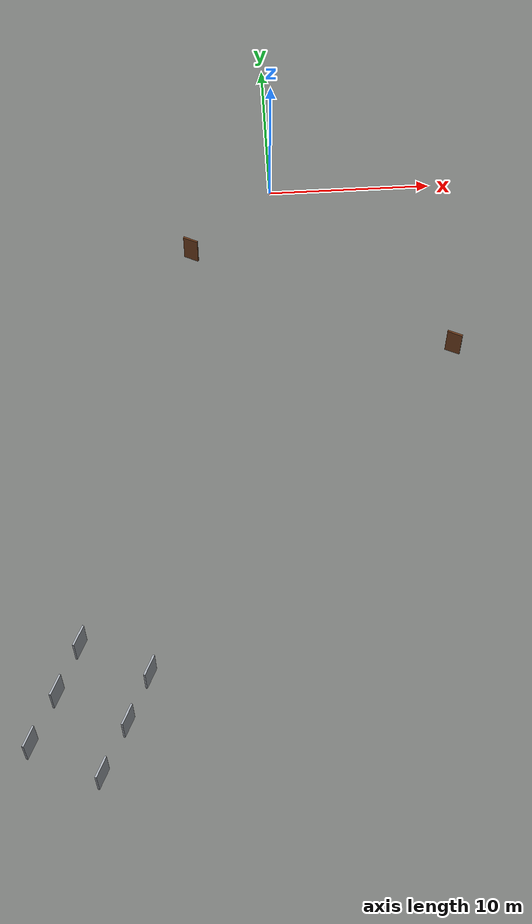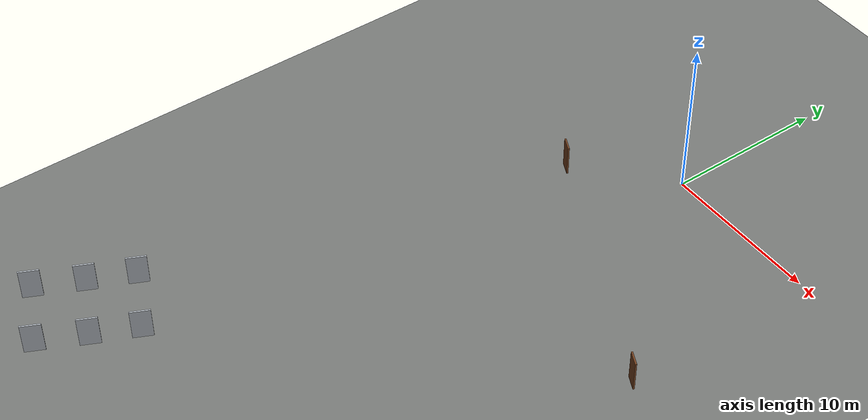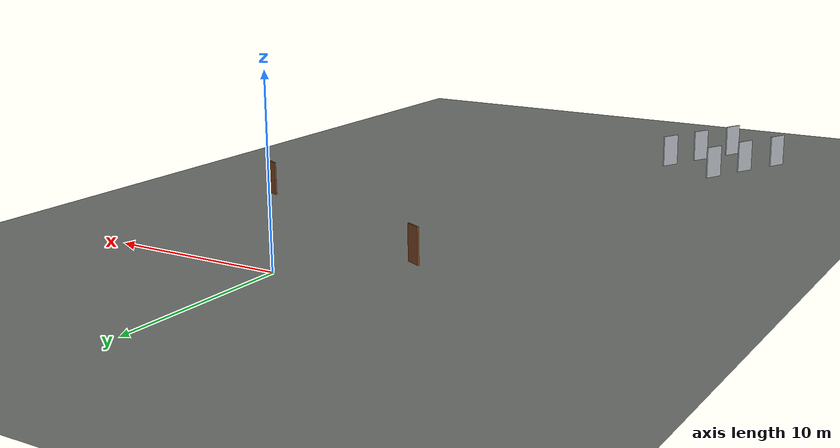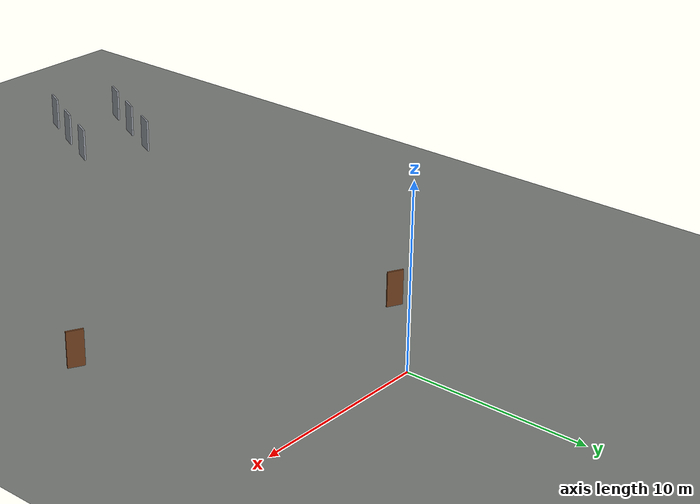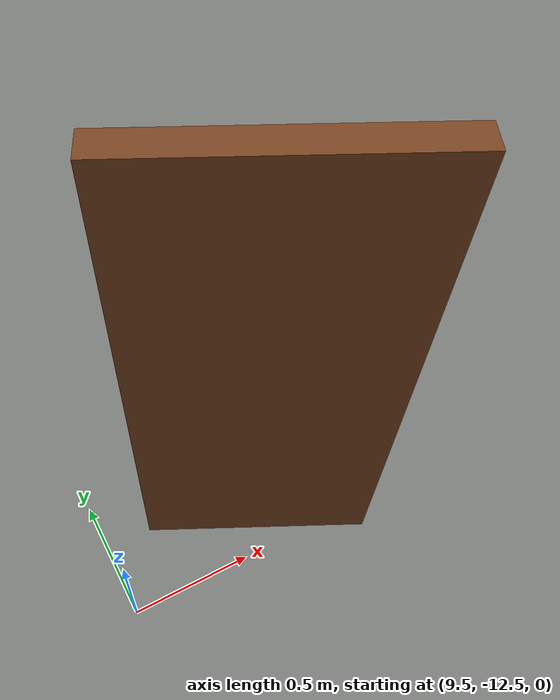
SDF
<sdf version="1.8">
 <world name="fuse_3rd">
  <physics type="ode">
   <max_step_size>0.004</max_step_size>
   <real_time_factor>1.0</real_time_factor>
   <real_time_update_rate>250</real_time_update_rate>
  </physics>
  <plugin name="gz::sim::systems::Physics" filename="gz-sim-physics-system"/>
  <plugin name="gz::sim::systems::UserCommands" filename="gz-sim-user-commands-system"/>
  <plugin name="gz::sim::systems::SceneBroadcaster" filename="gz-sim-scene-broadcaster-system"/>
  <plugin name="gz::sim::systems::Contact" filename="gz-sim-contact-system"/>
  <plugin name="gz::sim::systems::Imu" filename="gz-sim-imu-system"/>
  <plugin name="gz::sim::systems::Sensors" filename="gz-sim-sensors-system">
   <render_engine>ogre2</render_engine>
  </plugin>
  <gravity>0 0 -9.8</gravity>
  <magnetic_field>6e-06 2.3e-05 -4.2e-05</magnetic_field>
  <atmosphere type="adiabatic"/>
  <scene>
   <ambient>0.55 0.55 0.55 1</ambient>
   <background>0.72 0.76 0.80 1</background>
   <shadows>true</shadows>
  </scene>
  <light name="sun" type="directional">
   <pose>0 0 30 0 0 0</pose>
   <diffuse>0.8 0.8 0.78 1</diffuse>
   <specular>0.2 0.2 0.2 1</specular>
   <attenuation>
    <range>1000</range>
    <constant>0.9</constant>
    <linear>0.01</linear>
    <quadratic>0.001</quadratic>
   </attenuation>
   <direction>-0.45 0.2 -0.87</direction>
  </light>
  <model name="ground_plane">
   <static>true</static>
   <link name="link">
    <collision name="collision">
     <geometry><plane><normal>0 0 1</normal><size>160 160</size></plane></geometry>
    </collision>
    <visual name="visual">
     <geometry><plane><normal>0 0 1</normal><size>160 160</size></plane></geometry>
     <material>
      <ambient>0.45 0.46 0.45 1</ambient>
      <diffuse>0.45 0.46 0.45 1</diffuse>
      <specular>0.05 0.05 0.05 1</specular>
     </material>
    </visual>
   </link>
  </model>
  <model name="door_3300">
   <static>true</static>
   <pose>10.575 -12.575 0.0 0 0 1.118826</pose>
   <link name="panel">
    <collision name="collision">
     <pose>0 0.5 1.0 0 0 0</pose>
     <geometry><box><size>0.1 0.9144 2.0</size></box></geometry>
    </collision>
    <visual name="visual">
     <pose>0 0.5 1.0 0 0 0</pose>
     <geometry><box><size>0.1 0.9144 2.0</size></box></geometry>
     <material><ambient>0.45 0.25 0.12 1</ambient><diffuse>0.45 0.25 0.12 1</diffuse></material>
    </visual>
   </link>
  </model>
  <model name="door_2">
   <static>true</static>
   <pose>-4.675 -4.975 0.0 0 0 1.118826</pose>
   <link name="panel">
    <collision name="collision">
     <pose>0 0.5 1.0 0 0 0</pose>
     <geometry><box><size>0.1 0.9144 2.0</size></box></geometry>
    </collision>
    <visual name="visual">
     <pose>0 0.5 1.0 0 0 0</pose>
     <geometry><box><size>0.1 0.9144 2.0</size></box></geometry>
     <material><ambient>0.45 0.25 0.12 1</ambient><diffuse>0.45 0.25 0.12 1</diffuse></material>
    </visual>
   </link>
  </model>
  <model name="elevator_a_door">
   <static>true</static>
   <pose>-7.925 -31.325 0.0 0 0 2.68962233</pose>
   <link name="panel">
    <collision name="collision">
     <pose>0 0.6 1.0 0 0 0</pose>
     <geometry><box><size>0.1 1.2 2.0</size></box></geometry>
    </collision>
    <visual name="visual">
     <pose>0 0.6 1.0 0 0 0</pose>
     <geometry><box><size>0.1 1.2 2.0</size></box></geometry>
     <material>
      <ambient>0.55 0.57 0.60 1</ambient>
      <diffuse>0.65 0.67 0.70 1</diffuse>
      <specular>0.35 0.35 0.35 1</specular>
     </material>
    </visual>
   </link>
  </model>
  <model name="elevator_b_door">
   <static>true</static>
   <pose>-9.125 -33.925 0.0 0 0 2.68962233</pose>
   <link name="panel">
    <collision name="collision">
     <pose>0 0.6 1.0 0 0 0</pose>
     <geometry><box><size>0.1 1.2 2.0</size></box></geometry>
    </collision>
    <visual name="visual">
     <pose>0 0.6 1.0 0 0 0</pose>
     <geometry><box><size>0.1 1.2 2.0</size></box></geometry>
     <material>
      <ambient>0.55 0.57 0.60 1</ambient>
      <diffuse>0.65 0.67 0.70 1</diffuse>
      <specular>0.35 0.35 0.35 1</specular>
     </material>
    </visual>
   </link>
  </model>
  <model name="elevator_c_door">
   <static>true</static>
   <pose>-10.475 -36.625 0.0 0 0 2.68962233</pose>
   <link name="panel">
    <collision name="collision">
     <pose>0 0.6 1.0 0 0 0</pose>
     <geometry><box><size>0.1 1.2 2.0</size></box></geometry>
    </collision>
    <visual name="visual">
     <pose>0 0.6 1.0 0 0 0</pose>
     <geometry><box><size>0.1 1.2 2.0</size></box></geometry>
     <material>
      <ambient>0.55 0.57 0.60 1</ambient>
      <diffuse>0.65 0.67 0.70 1</diffuse>
      <specular>0.35 0.35 0.35 1</specular>
     </material>
    </visual>
   </link>
  </model>
  <model name="elevator_d_door">
   <static>true</static>
   <pose>-11.625 -29.475 0 0 0 2.68962233</pose>
   <link name="panel">
    <collision name="collision">
     <pose>0 0.6 1 0 0 0</pose>
     <geometry><box><size>0.1 1.2 2.0</size></box></geometry>
    </collision>
    <visual name="visual">
     <pose>0 0.6 1 0 0 0</pose>
     <geometry><box><size>0.1 1.2 2.0</size></box></geometry>
     <material><ambient>0.55 0.57 0.60 1</ambient><diffuse>0.65 0.67 0.70 1</diffuse></material>
    </visual>
   </link>
  </model>
  <model name="elevator_e_door">
   <static>true</static>
   <pose>-12.825 -32.125 0 0 0 2.68962233</pose>
   <link name="panel">
    <collision name="collision">
     <pose>0 0.6 1 0 0 0</pose>
     <geometry><box><size>0.1 1.2 2.0</size></box></geometry>
    </collision>
    <visual name="visual">
     <pose>0 0.6 1 0 0 0</pose>
     <geometry><box><size>0.1 1.2 2.0</size></box></geometry>
     <material><ambient>0.55 0.57 0.60 1</ambient><diffuse>0.65 0.67 0.70 1</diffuse></material>
    </visual>
   </link>
  </model>
  <model name="elevator_f_door">
   <static>true</static>
   <pose>-14.175 -34.825 0 0 0 2.68962233</pose>
   <link name="panel">
    <collision name="collision">
     <pose>0 0.6 1 0 0 0</pose>
     <geometry><box><size>0.1 1.2 2.0</size></box></geometry>
    </collision>
    <visual name="visual">
     <pose>0 0.6 1 0 0 0</pose>
     <geometry><box><size>0.1 1.2 2.0</size></box></geometry>
     <material><ambient>0.55 0.57 0.60 1</ambient><diffuse>0.65 0.67 0.70 1</diffuse></material>
    </visual>
   </link>
  </model>
 </world>
</sdf>
